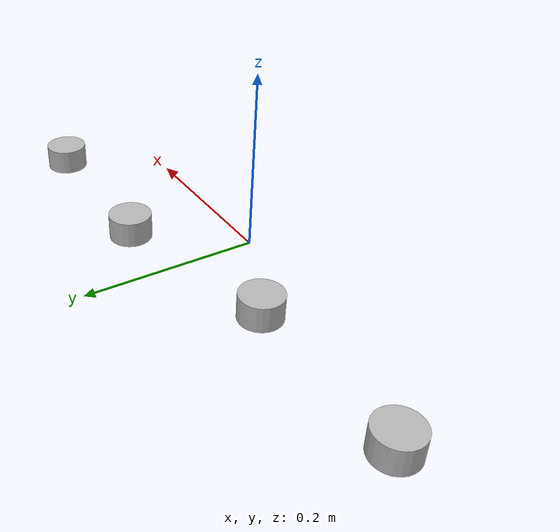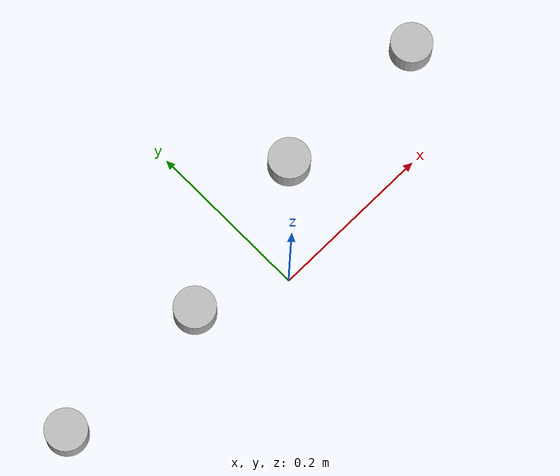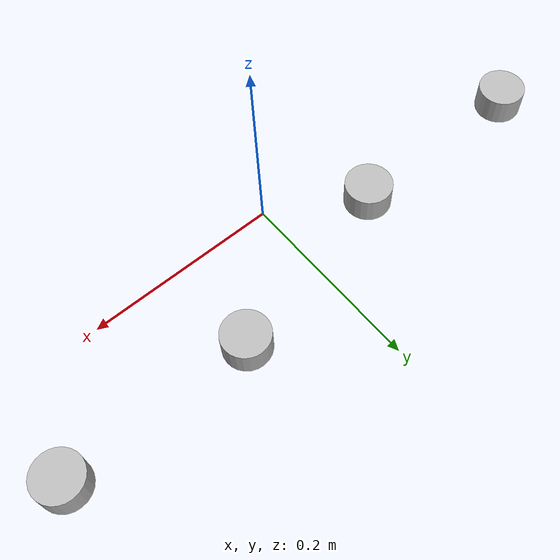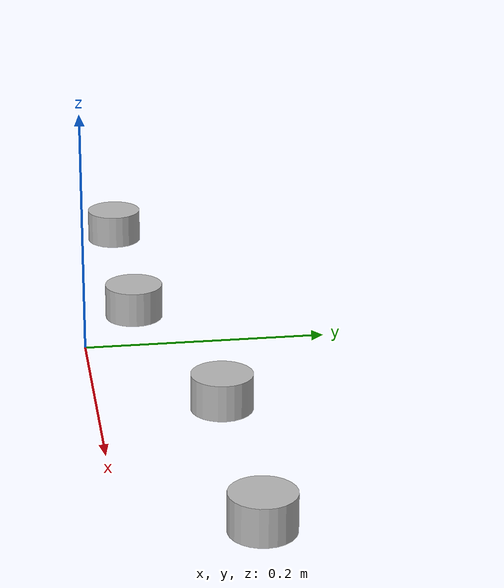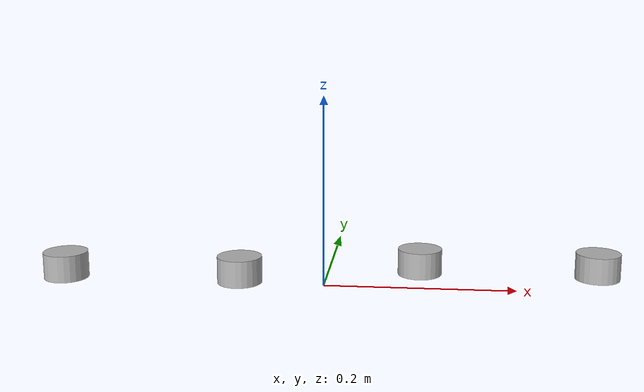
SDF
<?xml version='1.0'?>
<sdf version='1.6'>
		<model name="mainbase2">
			<self_collide>true</self_collide>
			<pose>0.0 0.0 0.0 0.0 0.0 0.0</pose>
			<!-- Start of parts of the pmodel mainbase2 -->
				<!-- Start of declarations for part "mainbase2::LBASE" -->
					<!-- Start of parts of part "mainbase2::LBASE" -->
					<!-- Start of declarations for part "mainbase2::LBASE::LWHEEL" -->
						<!-- Start of parts of part "mainbase2::LBASE::LWHEEL" -->
						<!-- End of parts of part "mainbase2::LBASE::LWHEEL" -->

						<!-- Start of links of part "mainbase2::LBASE::LWHEEL" -->
						<!-- link full name is mainbase2::LBASE::LWHEEL::wheel -->
						<link name="1-wheel">
								<pose>-0.30000000447034836 0.05000000074505806 0.0 0.0 -0.0 0.0</pose>
								<inertial>
									<pose>0.0 0.0 0.0 0.0 0.0 0.0</pose>
									<inertia>
										<ixx>1.0</ixx>
										<ixy>0.0</ixy>
										<ixz>0.0</ixz>
										<iyy>1.0</iyy>
										<iyz>0.0</iyz>
										<izz>1.0</izz>
									</inertia>
									<mass>1.0</mass>
								</inertial>
								<!-- body full name is mainbase2::LBASE::LWHEEL::wheel::bwheel -->
								<collision name="1--bwheel">
									<laser_retro>0.0</laser_retro>
									<pose>0.0 0.0 0.0 0.0 0.0 0.0</pose>
									<geometry>
										<cylinder>
											<radius>0.02500000037252903</radius>
											<length>0.029999999329447746</length>
										</cylinder>
									</geometry>
									<surface>
										<bounce>
											<restitution_coefficient>0.0</restitution_coefficient>
											<threshold>100000.0</threshold>
										</bounce>
										<friction>
											<ode>
												<mu>1.0</mu>
												<mu2>1.0</mu2>
												<fdir1>0.0 0.0 0.0</fdir1>
												<slip1>0.0</slip1>
												<slip2>0.0</slip2>
											</ode>
											<torsional>
												<coefficient>1.0</coefficient>
												<surface_radius>0.0</surface_radius>
											</torsional>
										</friction>
									</surface>
								</collision>
								<visual name="1--bwheel">
									<laser_retro>0.0</laser_retro>
									<pose>0.0 0.0 0.0 0.0 0.0 0.0</pose>
									<geometry>
										<cylinder>
											<radius>0.02500000037252903</radius>
											<length>0.029999999329447746</length>
										</cylinder>
									</geometry>
									<surface>
										<bounce>
											<restitution_coefficient>0.0</restitution_coefficient>
											<threshold>100000.0</threshold>
										</bounce>
										<friction>
											<ode>
												<mu>1.0</mu>
												<mu2>1.0</mu2>
												<fdir1>0.0 0.0 0.0</fdir1>
												<slip1>0.0</slip1>
												<slip2>0.0</slip2>
											</ode>
											<torsional>
												<coefficient>1.0</coefficient>
												<surface_radius>0.0</surface_radius>
											</torsional>
										</friction>
									</surface>
								</visual>
						</link>
						<!-- End of links of part "mainbase2::LBASE::LWHEEL" -->

						<!-- Start of joints of part "mainbase2::LBASE::LWHEEL" -->
						<!-- End of joints of part "mainbase2::LBASE::LWHEEL" -->

						<!-- Start of fixed connections of part "mainbase2::LBASE::LWHEEL" -->

						<!-- End of fixed connections of part "mainbase2::LBASE::LWHEEL" -->
					<!-- End of declarations for part "mainbase2::LBASE::LWHEEL" -->
					<!-- Start of declarations for part "mainbase2::LBASE::RWHEEL" -->
						<!-- Start of parts of part "mainbase2::LBASE::RWHEEL" -->
						<!-- End of parts of part "mainbase2::LBASE::RWHEEL" -->

						<!-- Start of links of part "mainbase2::LBASE::RWHEEL" -->
						<!-- link full name is mainbase2::LBASE::RWHEEL::wheel -->
						<link name="2-wheel">
								<pose>-0.10000000149011612 0.05000000074505806 0.0 0.0 -0.0 0.0</pose>
								<inertial>
									<pose>0.0 0.0 0.0 0.0 0.0 0.0</pose>
									<inertia>
										<ixx>1.0</ixx>
										<ixy>0.0</ixy>
										<ixz>0.0</ixz>
										<iyy>1.0</iyy>
										<iyz>0.0</iyz>
										<izz>1.0</izz>
									</inertia>
									<mass>1.0</mass>
								</inertial>
								<!-- body full name is mainbase2::LBASE::RWHEEL::wheel::bwheel -->
								<collision name="2--bwheel">
									<laser_retro>0.0</laser_retro>
									<pose>0.0 0.0 0.0 0.0 0.0 0.0</pose>
									<geometry>
										<cylinder>
											<radius>0.02500000037252903</radius>
											<length>0.029999999329447746</length>
										</cylinder>
									</geometry>
									<surface>
										<bounce>
											<restitution_coefficient>0.0</restitution_coefficient>
											<threshold>100000.0</threshold>
										</bounce>
										<friction>
											<ode>
												<mu>1.0</mu>
												<mu2>1.0</mu2>
												<fdir1>0.0 0.0 0.0</fdir1>
												<slip1>0.0</slip1>
												<slip2>0.0</slip2>
											</ode>
											<torsional>
												<coefficient>1.0</coefficient>
												<surface_radius>0.0</surface_radius>
											</torsional>
										</friction>
									</surface>
								</collision>
								<visual name="2--bwheel">
									<laser_retro>0.0</laser_retro>
									<pose>0.0 0.0 0.0 0.0 0.0 0.0</pose>
									<geometry>
										<cylinder>
											<radius>0.02500000037252903</radius>
											<length>0.029999999329447746</length>
										</cylinder>
									</geometry>
									<surface>
										<bounce>
											<restitution_coefficient>0.0</restitution_coefficient>
											<threshold>100000.0</threshold>
										</bounce>
										<friction>
											<ode>
												<mu>1.0</mu>
												<mu2>1.0</mu2>
												<fdir1>0.0 0.0 0.0</fdir1>
												<slip1>0.0</slip1>
												<slip2>0.0</slip2>
											</ode>
											<torsional>
												<coefficient>1.0</coefficient>
												<surface_radius>0.0</surface_radius>
											</torsional>
										</friction>
									</surface>
								</visual>
						</link>
						<!-- End of links of part "mainbase2::LBASE::RWHEEL" -->

						<!-- Start of joints of part "mainbase2::LBASE::RWHEEL" -->
						<!-- End of joints of part "mainbase2::LBASE::RWHEEL" -->

						<!-- Start of fixed connections of part "mainbase2::LBASE::RWHEEL" -->

						<!-- End of fixed connections of part "mainbase2::LBASE::RWHEEL" -->
					<!-- End of declarations for part "mainbase2::LBASE::RWHEEL" -->
					<!-- End of parts of part "mainbase2::LBASE" -->

					<!-- Start of links of part "mainbase2::LBASE" -->
					<!-- link full name is mainbase2::LBASE::Core -->
					<link name="3-Core">
							<pose>-0.20000000298023224 0.0 0.0 0.0 0.0 0.0</pose>
							<inertial>
								<pose>0.0 0.0 0.0 0.0 0.0 0.0</pose>
								<inertia>
									<ixx>1.0</ixx>
									<ixy>0.0</ixy>
									<ixz>0.0</ixz>
									<iyy>1.0</iyy>
									<iyz>0.0</iyz>
									<izz>1.0</izz>
								</inertia>
								<mass>1.0</mass>
							</inertial>
					</link>
					<!-- End of links of part "mainbase2::LBASE" -->

					<!-- Start of joints of part "mainbase2::LBASE" -->
					<!-- Full name of joint: mainbase2::LBASE::Core::LJ from mainbase2::LBASE::Core to mainbase2::LBASE::LWHEEL::wheel-->
					<joint name="4-LJ" type="revolute">
						<pose>0.10000000149011612 -0.05000000074505806 0.0 0.0 -0.0 0.0</pose>
						<parent>3-Core</parent>
						<child>1-wheel</child>
						<!-- WARNING: The SDF generator relies on annotations of the joint 4-LJ to specify in SDF aspects of the joint that are
							 accounted for in the equations. -->
					</joint>
					<!-- Full name of joint: mainbase2::LBASE::Core::RJ from mainbase2::LBASE::Core to mainbase2::LBASE::RWHEEL::wheel-->
					<joint name="5-RJ" type="revolute">
						<pose>-0.10000000149011612 -0.05000000074505806 0.0 0.0 -0.0 0.0</pose>
						<parent>3-Core</parent>
						<child>2-wheel</child>
						<!-- WARNING: The SDF generator relies on annotations of the joint 5-RJ to specify in SDF aspects of the joint that are
							 accounted for in the equations. -->
					</joint>
					<!-- End of joints of part "mainbase2::LBASE" -->

					<!-- Start of fixed connections of part "mainbase2::LBASE" -->

					<!-- fixed joint full name is mainbase2::LBASE::Core::fixedJoint::mainbase2::LBASE::LWHEEL::wheel from mainbase2::LBASE::Core to mainbase2::LBASE::LWHEEL::wheel -->
					<joint name="6-fixedJoint" type="fixed">
						<parent>3-Core</parent>
						<child>1-wheel</child>
						<axis><xyz>0 0 1</xyz></axis>
					</joint>
					<!-- fixed joint full name is mainbase2::LBASE::Core::fixedJoint::mainbase2::LBASE::RWHEEL::wheel from mainbase2::LBASE::Core to mainbase2::LBASE::RWHEEL::wheel -->
					<joint name="7-fixedJoint" type="fixed">
						<parent>3-Core</parent>
						<child>2-wheel</child>
						<axis><xyz>0 0 1</xyz></axis>
					</joint>
					<!-- End of fixed connections of part "mainbase2::LBASE" -->
				<!-- End of declarations for part "mainbase2::LBASE" -->
				<!-- Start of declarations for part "mainbase2::RBASE" -->
					<!-- Start of parts of part "mainbase2::RBASE" -->
					<!-- Start of declarations for part "mainbase2::RBASE::LWHEEL" -->
						<!-- Start of parts of part "mainbase2::RBASE::LWHEEL" -->
						<!-- End of parts of part "mainbase2::RBASE::LWHEEL" -->

						<!-- Start of links of part "mainbase2::RBASE::LWHEEL" -->
						<!-- link full name is mainbase2::RBASE::LWHEEL::wheel -->
						<link name="8-wheel">
								<pose>0.10000000149011612 0.10000000149011612 0.0 0.0 -0.0 0.0</pose>
								<inertial>
									<pose>0.0 0.0 0.0 0.0 0.0 0.0</pose>
									<inertia>
										<ixx>1.0</ixx>
										<ixy>0.0</ixy>
										<ixz>0.0</ixz>
										<iyy>1.0</iyy>
										<iyz>0.0</iyz>
										<izz>1.0</izz>
									</inertia>
									<mass>1.0</mass>
								</inertial>
								<!-- body full name is mainbase2::RBASE::LWHEEL::wheel::bwheel -->
								<collision name="3--bwheel">
									<laser_retro>0.0</laser_retro>
									<pose>0.0 0.0 0.0 0.0 0.0 0.0</pose>
									<geometry>
										<cylinder>
											<radius>0.02500000037252903</radius>
											<length>0.029999999329447746</length>
										</cylinder>
									</geometry>
									<surface>
										<bounce>
											<restitution_coefficient>0.0</restitution_coefficient>
											<threshold>100000.0</threshold>
										</bounce>
										<friction>
											<ode>
												<mu>1.0</mu>
												<mu2>1.0</mu2>
												<fdir1>0.0 0.0 0.0</fdir1>
												<slip1>0.0</slip1>
												<slip2>0.0</slip2>
											</ode>
											<torsional>
												<coefficient>1.0</coefficient>
												<surface_radius>0.0</surface_radius>
											</torsional>
										</friction>
									</surface>
								</collision>
								<visual name="3--bwheel">
									<laser_retro>0.0</laser_retro>
									<pose>0.0 0.0 0.0 0.0 0.0 0.0</pose>
									<geometry>
										<cylinder>
											<radius>0.02500000037252903</radius>
											<length>0.029999999329447746</length>
										</cylinder>
									</geometry>
									<surface>
										<bounce>
											<restitution_coefficient>0.0</restitution_coefficient>
											<threshold>100000.0</threshold>
										</bounce>
										<friction>
											<ode>
												<mu>1.0</mu>
												<mu2>1.0</mu2>
												<fdir1>0.0 0.0 0.0</fdir1>
												<slip1>0.0</slip1>
												<slip2>0.0</slip2>
											</ode>
											<torsional>
												<coefficient>1.0</coefficient>
												<surface_radius>0.0</surface_radius>
											</torsional>
										</friction>
									</surface>
								</visual>
						</link>
						<!-- End of links of part "mainbase2::RBASE::LWHEEL" -->

						<!-- Start of joints of part "mainbase2::RBASE::LWHEEL" -->
						<!-- End of joints of part "mainbase2::RBASE::LWHEEL" -->

						<!-- Start of fixed connections of part "mainbase2::RBASE::LWHEEL" -->

						<!-- End of fixed connections of part "mainbase2::RBASE::LWHEEL" -->
					<!-- End of declarations for part "mainbase2::RBASE::LWHEEL" -->
					<!-- Start of declarations for part "mainbase2::RBASE::RWHEEL" -->
						<!-- Start of parts of part "mainbase2::RBASE::RWHEEL" -->
						<!-- End of parts of part "mainbase2::RBASE::RWHEEL" -->

						<!-- Start of links of part "mainbase2::RBASE::RWHEEL" -->
						<!-- link full name is mainbase2::RBASE::RWHEEL::wheel -->
						<link name="9-wheel">
								<pose>0.30000000447034836 0.10000000149011612 0.0 0.0 -0.0 0.0</pose>
								<inertial>
									<pose>0.0 0.0 0.0 0.0 0.0 0.0</pose>
									<inertia>
										<ixx>1.0</ixx>
										<ixy>0.0</ixy>
										<ixz>0.0</ixz>
										<iyy>1.0</iyy>
										<iyz>0.0</iyz>
										<izz>1.0</izz>
									</inertia>
									<mass>1.0</mass>
								</inertial>
								<!-- body full name is mainbase2::RBASE::RWHEEL::wheel::bwheel -->
								<collision name="4--bwheel">
									<laser_retro>0.0</laser_retro>
									<pose>0.0 0.0 0.0 0.0 0.0 0.0</pose>
									<geometry>
										<cylinder>
											<radius>0.02500000037252903</radius>
											<length>0.029999999329447746</length>
										</cylinder>
									</geometry>
									<surface>
										<bounce>
											<restitution_coefficient>0.0</restitution_coefficient>
											<threshold>100000.0</threshold>
										</bounce>
										<friction>
											<ode>
												<mu>1.0</mu>
												<mu2>1.0</mu2>
												<fdir1>0.0 0.0 0.0</fdir1>
												<slip1>0.0</slip1>
												<slip2>0.0</slip2>
											</ode>
											<torsional>
												<coefficient>1.0</coefficient>
												<surface_radius>0.0</surface_radius>
											</torsional>
										</friction>
									</surface>
								</collision>
								<visual name="4--bwheel">
									<laser_retro>0.0</laser_retro>
									<pose>0.0 0.0 0.0 0.0 0.0 0.0</pose>
									<geometry>
										<cylinder>
											<radius>0.02500000037252903</radius>
											<length>0.029999999329447746</length>
										</cylinder>
									</geometry>
									<surface>
										<bounce>
											<restitution_coefficient>0.0</restitution_coefficient>
											<threshold>100000.0</threshold>
										</bounce>
										<friction>
											<ode>
												<mu>1.0</mu>
												<mu2>1.0</mu2>
												<fdir1>0.0 0.0 0.0</fdir1>
												<slip1>0.0</slip1>
												<slip2>0.0</slip2>
											</ode>
											<torsional>
												<coefficient>1.0</coefficient>
												<surface_radius>0.0</surface_radius>
											</torsional>
										</friction>
									</surface>
								</visual>
						</link>
						<!-- End of links of part "mainbase2::RBASE::RWHEEL" -->

						<!-- Start of joints of part "mainbase2::RBASE::RWHEEL" -->
						<!-- End of joints of part "mainbase2::RBASE::RWHEEL" -->

						<!-- Start of fixed connections of part "mainbase2::RBASE::RWHEEL" -->

						<!-- End of fixed connections of part "mainbase2::RBASE::RWHEEL" -->
					<!-- End of declarations for part "mainbase2::RBASE::RWHEEL" -->
					<!-- End of parts of part "mainbase2::RBASE" -->

					<!-- Start of links of part "mainbase2::RBASE" -->
					<!-- link full name is mainbase2::RBASE::Core -->
					<link name="10-Core">
							<pose>0.20000000298023224 0.0 0.0 0.0 0.0 0.0</pose>
							<inertial>
								<pose>0.0 0.0 0.0 0.0 0.0 0.0</pose>
								<inertia>
									<ixx>1.0</ixx>
									<ixy>0.0</ixy>
									<ixz>0.0</ixz>
									<iyy>1.0</iyy>
									<iyz>0.0</iyz>
									<izz>1.0</izz>
								</inertia>
								<mass>1.0</mass>
							</inertial>
					</link>
					<!-- End of links of part "mainbase2::RBASE" -->

					<!-- Start of joints of part "mainbase2::RBASE" -->
					<!-- Full name of joint: mainbase2::RBASE::Core::RJ from mainbase2::RBASE::Core to mainbase2::RBASE::RWHEEL::wheel-->
					<joint name="11-RJ" type="revolute">
						<pose>-0.10000000149011612 -0.10000000149011612 0.0 0.0 -0.0 0.0</pose>
						<parent>10-Core</parent>
						<child>9-wheel</child>
						<!-- WARNING: The SDF generator relies on annotations of the joint 11-RJ to specify in SDF aspects of the joint that are
							 accounted for in the equations. -->
					</joint>
					<!-- Full name of joint: mainbase2::RBASE::Core::LJ from mainbase2::RBASE::Core to mainbase2::RBASE::LWHEEL::wheel-->
					<joint name="12-LJ" type="revolute">
						<pose>0.10000000149011612 -0.10000000149011612 0.0 0.0 -0.0 0.0</pose>
						<parent>10-Core</parent>
						<child>8-wheel</child>
						<!-- WARNING: The SDF generator relies on annotations of the joint 12-LJ to specify in SDF aspects of the joint that are
							 accounted for in the equations. -->
					</joint>
					<!-- End of joints of part "mainbase2::RBASE" -->

					<!-- Start of fixed connections of part "mainbase2::RBASE" -->

					<!-- fixed joint full name is mainbase2::RBASE::Core::fixedJoint::mainbase2::RBASE::LWHEEL::wheel from mainbase2::RBASE::Core to mainbase2::RBASE::LWHEEL::wheel -->
					<joint name="13-fixedJoint" type="fixed">
						<parent>10-Core</parent>
						<child>8-wheel</child>
						<axis><xyz>0 0 1</xyz></axis>
					</joint>
					<!-- fixed joint full name is mainbase2::RBASE::Core::fixedJoint::mainbase2::RBASE::RWHEEL::wheel from mainbase2::RBASE::Core to mainbase2::RBASE::RWHEEL::wheel -->
					<joint name="14-fixedJoint" type="fixed">
						<parent>10-Core</parent>
						<child>9-wheel</child>
						<axis><xyz>0 0 1</xyz></axis>
					</joint>
					<!-- End of fixed connections of part "mainbase2::RBASE" -->
				<!-- End of declarations for part "mainbase2::RBASE" -->
			<!-- End of parts of the pmodel mainbase2 -->

			<!-- Start of links of the pmodel mainbase2 -->
			<!-- End of links of the pmodel mainbase2 -->

			<!-- Start of joints of the pmodel mainbase2 -->
			<!-- End of joints of the pmodel mainbase2 -->

			<!-- Start of fixed connections of the pmodel mainbase2 -->
			<!-- End of fixed connections of the pmodel mainbase2 -->
		</model>
</sdf>
